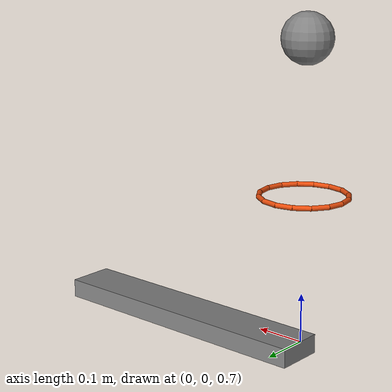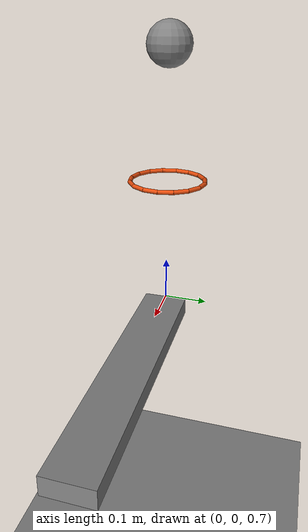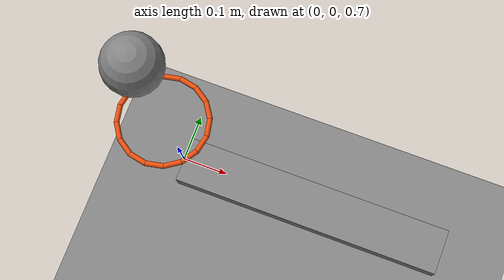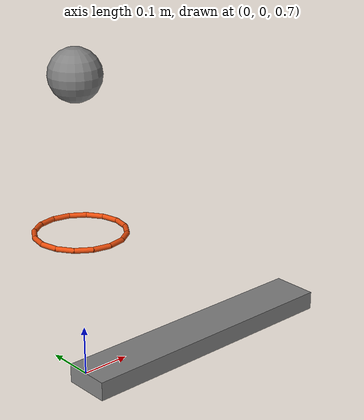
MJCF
<mujoco model="vertical_drop_through_a_clear_ring_onto_a_lever">
  <compiler angle="radian"/>
  <option timestep="0.002"/>
  <worldbody>
    <geom name="floor" type="plane" size="6 6 0.1" friction="0.72 0.005 0.0001"/>
    <body name="ring1">
      <geom name="ring1_rim00" type="capsule" size="0.005" fromto="0.0866652 0 1 0.0800683 0.0331654 1" friction="0.72 0.005 0.0001" solref="0.01 1" rgba="0.9 0.3 0.05 1"/>
      <geom name="ring1_rim01" type="capsule" size="0.005" fromto="0.0800683 0.0331654 1 0.0612816 0.0612816 1" friction="0.72 0.005 0.0001" solref="0.01 1" rgba="0.9 0.3 0.05 1"/>
      <geom name="ring1_rim02" type="capsule" size="0.005" fromto="0.0612816 0.0612816 1 0.0331654 0.0800683 1" friction="0.72 0.005 0.0001" solref="0.01 1" rgba="0.9 0.3 0.05 1"/>
      <geom name="ring1_rim03" type="capsule" size="0.005" fromto="0.0331654 0.0800683 1 0 0.0866652 1" friction="0.72 0.005 0.0001" solref="0.01 1" rgba="0.9 0.3 0.05 1"/>
      <geom name="ring1_rim04" type="capsule" size="0.005" fromto="0 0.0866652 1 -0.0331654 0.0800683 1" friction="0.72 0.005 0.0001" solref="0.01 1" rgba="0.9 0.3 0.05 1"/>
      <geom name="ring1_rim05" type="capsule" size="0.005" fromto="-0.0331654 0.0800683 1 -0.0612816 0.0612816 1" friction="0.72 0.005 0.0001" solref="0.01 1" rgba="0.9 0.3 0.05 1"/>
      <geom name="ring1_rim06" type="capsule" size="0.005" fromto="-0.0612816 0.0612816 1 -0.0800683 0.0331654 1" friction="0.72 0.005 0.0001" solref="0.01 1" rgba="0.9 0.3 0.05 1"/>
      <geom name="ring1_rim07" type="capsule" size="0.005" fromto="-0.0800683 0.0331654 1 -0.0866652 0 1" friction="0.72 0.005 0.0001" solref="0.01 1" rgba="0.9 0.3 0.05 1"/>
      <geom name="ring1_rim08" type="capsule" size="0.005" fromto="-0.0866652 0 1 -0.0800683 -0.0331654 1" friction="0.72 0.005 0.0001" solref="0.01 1" rgba="0.9 0.3 0.05 1"/>
      <geom name="ring1_rim09" type="capsule" size="0.005" fromto="-0.0800683 -0.0331654 1 -0.0612816 -0.0612816 1" friction="0.72 0.005 0.0001" solref="0.01 1" rgba="0.9 0.3 0.05 1"/>
      <geom name="ring1_rim10" type="capsule" size="0.005" fromto="-0.0612816 -0.0612816 1 -0.0331654 -0.0800683 1" friction="0.72 0.005 0.0001" solref="0.01 1" rgba="0.9 0.3 0.05 1"/>
      <geom name="ring1_rim11" type="capsule" size="0.005" fromto="-0.0331654 -0.0800683 1 0 -0.0866652 1" friction="0.72 0.005 0.0001" solref="0.01 1" rgba="0.9 0.3 0.05 1"/>
      <geom name="ring1_rim12" type="capsule" size="0.005" fromto="0 -0.0866652 1 0.0331654 -0.0800683 1" friction="0.72 0.005 0.0001" solref="0.01 1" rgba="0.9 0.3 0.05 1"/>
      <geom name="ring1_rim13" type="capsule" size="0.005" fromto="0.0331654 -0.0800683 1 0.0612816 -0.0612816 1" friction="0.72 0.005 0.0001" solref="0.01 1" rgba="0.9 0.3 0.05 1"/>
      <geom name="ring1_rim14" type="capsule" size="0.005" fromto="0.0612816 -0.0612816 1 0.0800683 -0.0331654 1" friction="0.72 0.005 0.0001" solref="0.01 1" rgba="0.9 0.3 0.05 1"/>
      <geom name="ring1_rim15" type="capsule" size="0.005" fromto="0.0800683 -0.0331654 1 0.0866652 0 1" friction="0.72 0.005 0.0001" solref="0.01 1" rgba="0.9 0.3 0.05 1"/>
    </body>
    <body name="lever1" pos="0.3 0 0.68">
      <joint name="lever1_hinge" type="hinge" pos="0 0 0" axis="0 1 0" damping="0.04"/>
      <geom name="lever1" type="box" pos="0 0 0" size="0.3 0.05 0.02" mass="0.5" friction="0.72 0.005 0.0001" solref="0.01 1"/>
    </body>
    <body name="ball1" pos="0 0 1.3">
      <freejoint/>
      <geom name="ball1" type="sphere" pos="0 0 0" size="0.05" mass="0.2" condim="6" friction="0.72 0.005 0.0001" solref="0.01 1"/>
    </body>
  </worldbody>
  <keyframe>
    <key name="start" qpos="0 0 0 1.3 1 0 0 0" qvel="0 0 0 0 0 0 0"/>
  </keyframe>
</mujoco>
